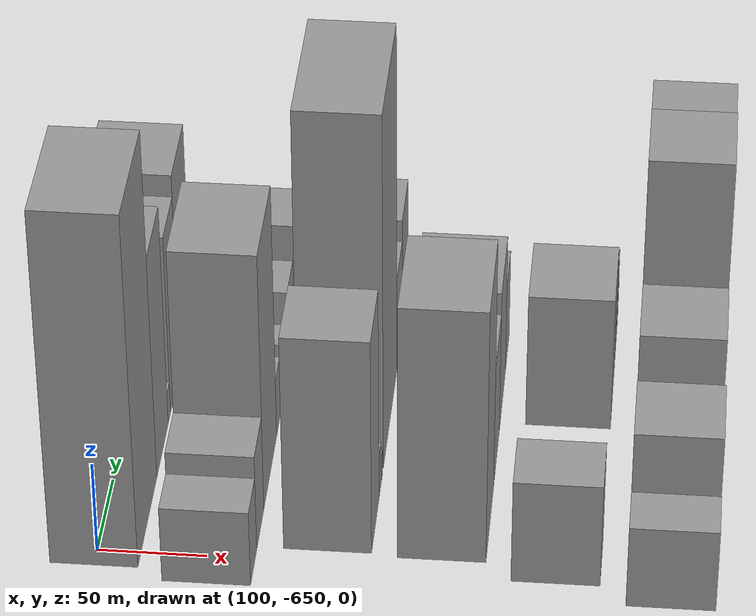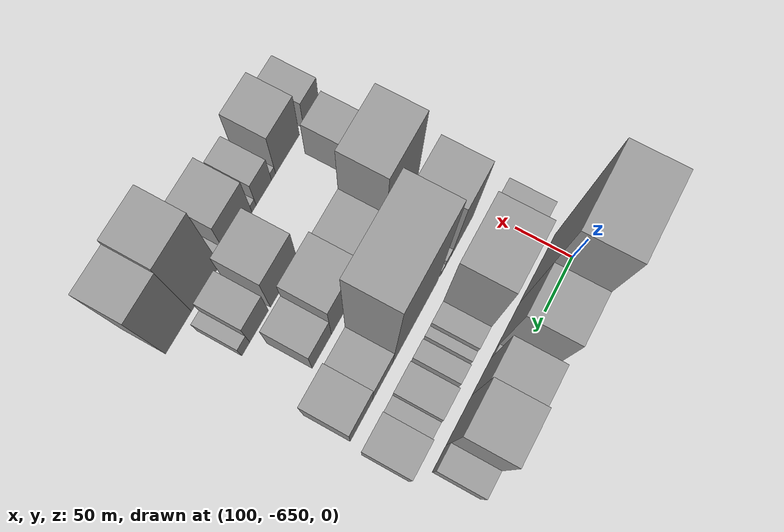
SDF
<sdf version="1.6">
 <world name="default">
  <model name="building_7">
   <static>1</static>
   <pose>100.0000 -628.3598 0 0.000000 0.000000 0.000000</pose>
   <link name="link">
    <pose>0 0 97.50 0 0 0</pose>
    <collision name="collision"><geometry><box><size>40.0000 63.6335 195.0000</size></box></geometry></collision>
    <visual name="visual">
     <cast_shadows>0</cast_shadows>
     <geometry><box><size>40.0000 63.6335 195.0000</size></box></geometry>
     <material>
      <script>
       <uri>model://grey_wall/materials/scripts</uri>
       <uri>model://grey_wall/materials/textures</uri>
       <name>vrc/grey_wall</name>
      </script>
     </material>
    </visual>
   </link>
  </model>
  <model name="building_8">
   <static>1</static>
   <pose>100.0000 -576.6208 0 0.000000 0.000000 0.000000</pose>
   <link name="link">
    <pose>0 0 63.00 0 0 0</pose>
    <collision name="collision"><geometry><box><size>40.0000 39.8445 126.0000</size></box></geometry></collision>
    <visual name="visual">
     <cast_shadows>0</cast_shadows>
     <geometry><box><size>40.0000 39.8445 126.0000</size></box></geometry>
     <material>
      <script>
       <uri>model://grey_wall/materials/scripts</uri>
       <uri>model://grey_wall/materials/textures</uri>
       <name>vrc/grey_wall</name>
      </script>
     </material>
    </visual>
   </link>
  </model>
  <model name="building_9">
   <static>1</static>
   <pose>100.0000 -552.2339 0 0.000000 0.000000 0.000000</pose>
   <link name="link">
    <pose>0 0 9.00 0 0 0</pose>
    <collision name="collision"><geometry><box><size>40.0000 8.9292 18.0000</size></box></geometry></collision>
    <visual name="visual">
     <cast_shadows>0</cast_shadows>
     <geometry><box><size>40.0000 8.9292 18.0000</size></box></geometry>
     <material>
      <script>
       <uri>model://grey_wall/materials/scripts</uri>
       <uri>model://grey_wall/materials/textures</uri>
       <name>vrc/grey_wall</name>
      </script>
     </material>
    </visual>
   </link>
  </model>
  <model name="building_10">
   <static>1</static>
   <pose>100.0000 -531.4667 0 0.000000 0.000000 0.000000</pose>
   <link name="link">
    <pose>0 0 51.00 0 0 0</pose>
    <collision name="collision"><geometry><box><size>40.0000 32.6054 102.0000</size></box></geometry></collision>
    <visual name="visual">
     <cast_shadows>0</cast_shadows>
     <geometry><box><size>40.0000 32.6054 102.0000</size></box></geometry>
     <material>
      <script>
       <uri>model://grey_wall/materials/scripts</uri>
       <uri>model://grey_wall/materials/textures</uri>
       <name>vrc/grey_wall</name>
      </script>
     </material>
    </visual>
   </link>
  </model>
  <model name="building_11">
   <static>1</static>
   <pose>100.0000 -494.0086 0 0.000000 0.000000 0.000000</pose>
   <link name="link">
    <pose>0 0 57.00 0 0 0</pose>
    <collision name="collision"><geometry><box><size>40.0000 42.3107 114.0000</size></box></geometry></collision>
    <visual name="visual">
     <cast_shadows>0</cast_shadows>
     <geometry><box><size>40.0000 42.3107 114.0000</size></box></geometry>
     <material>
      <script>
       <uri>model://grey_wall/materials/scripts</uri>
       <uri>model://grey_wall/materials/textures</uri>
       <name>vrc/grey_wall</name>
      </script>
     </material>
    </visual>
   </link>
  </model>
  <model name="building_12">
   <static>1</static>
   <pose>100.0000 -461.6784 0 0.000000 0.000000 0.000000</pose>
   <link name="link">
    <pose>0 0 19.50 0 0 0</pose>
    <collision name="collision"><geometry><box><size>40.0000 22.3498 39.0000</size></box></geometry></collision>
    <visual name="visual">
     <cast_shadows>0</cast_shadows>
     <geometry><box><size>40.0000 22.3498 39.0000</size></box></geometry>
     <material>
      <script>
       <uri>model://grey_wall/materials/scripts</uri>
       <uri>model://grey_wall/materials/textures</uri>
       <name>vrc/grey_wall</name>
      </script>
     </material>
    </visual>
   </link>
  </model>
  <model name="building_53">
   <static>1</static>
   <pose>152.0000 -656.1648 0 0.000000 0.000000 0.000000</pose>
   <link name="link">
    <pose>0 0 21.00 0 0 0</pose>
    <collision name="collision"><geometry><box><size>40.0000 24.4425 42.0000</size></box></geometry></collision>
    <visual name="visual">
     <cast_shadows>0</cast_shadows>
     <geometry><box><size>40.0000 24.4425 42.0000</size></box></geometry>
     <material>
      <script>
       <uri>model://grey_wall/materials/scripts</uri>
       <uri>model://grey_wall/materials/textures</uri>
       <name>vrc/grey_wall</name>
      </script>
     </material>
    </visual>
   </link>
  </model>
  <model name="building_54">
   <static>1</static>
   <pose>152.0000 -629.5401 0 0.000000 0.000000 0.000000</pose>
   <link name="link">
    <pose>0 0 27.00 0 0 0</pose>
    <collision name="collision"><geometry><box><size>40.0000 28.8069 54.0000</size></box></geometry></collision>
    <visual name="visual">
     <cast_shadows>0</cast_shadows>
     <geometry><box><size>40.0000 28.8069 54.0000</size></box></geometry>
     <material>
      <script>
       <uri>model://grey_wall/materials/scripts</uri>
       <uri>model://grey_wall/materials/textures</uri>
       <name>vrc/grey_wall</name>
      </script>
     </material>
    </visual>
   </link>
  </model>
  <model name="building_55">
   <static>1</static>
   <pose>152.0000 -588.4595 0 0.000000 0.000000 0.000000</pose>
   <link name="link">
    <pose>0 0 72.00 0 0 0</pose>
    <collision name="collision"><geometry><box><size>40.0000 53.3543 144.0000</size></box></geometry></collision>
    <visual name="visual">
     <cast_shadows>0</cast_shadows>
     <geometry><box><size>40.0000 53.3543 144.0000</size></box></geometry>
     <material>
      <script>
       <uri>model://grey_wall/materials/scripts</uri>
       <uri>model://grey_wall/materials/textures</uri>
       <name>vrc/grey_wall</name>
      </script>
     </material>
    </visual>
   </link>
  </model>
  <model name="building_56">
   <static>1</static>
   <pose>152.0000 -552.4265 0 0.000000 0.000000 0.000000</pose>
   <link name="link">
    <pose>0 0 16.50 0 0 0</pose>
    <collision name="collision"><geometry><box><size>40.0000 18.7116 33.0000</size></box></geometry></collision>
    <visual name="visual">
     <cast_shadows>0</cast_shadows>
     <geometry><box><size>40.0000 18.7116 33.0000</size></box></geometry>
     <material>
      <script>
       <uri>model://grey_wall/materials/scripts</uri>
       <uri>model://grey_wall/materials/textures</uri>
       <name>vrc/grey_wall</name>
      </script>
     </material>
    </visual>
   </link>
  </model>
  <model name="building_57">
   <static>1</static>
   <pose>152.0000 -538.7161 0 0.000000 0.000000 0.000000</pose>
   <link name="link">
    <pose>0 0 10.50 0 0 0</pose>
    <collision name="collision"><geometry><box><size>40.0000 8.7092 21.0000</size></box></geometry></collision>
    <visual name="visual">
     <cast_shadows>0</cast_shadows>
     <geometry><box><size>40.0000 8.7092 21.0000</size></box></geometry>
     <material>
      <script>
       <uri>model://grey_wall/materials/scripts</uri>
       <uri>model://grey_wall/materials/textures</uri>
       <name>vrc/grey_wall</name>
      </script>
     </material>
    </visual>
   </link>
  </model>
  <model name="building_58">
   <static>1</static>
   <pose>152.0000 -522.2402 0 0.000000 0.000000 0.000000</pose>
   <link name="link">
    <pose>0 0 15.00 0 0 0</pose>
    <collision name="collision"><geometry><box><size>40.0000 16.2424 30.0000</size></box></geometry></collision>
    <visual name="visual">
     <cast_shadows>0</cast_shadows>
     <geometry><box><size>40.0000 16.2424 30.0000</size></box></geometry>
     <material>
      <script>
       <uri>model://grey_wall/materials/scripts</uri>
       <uri>model://grey_wall/materials/textures</uri>
       <name>vrc/grey_wall</name>
      </script>
     </material>
    </visual>
   </link>
  </model>
  <model name="building_59">
   <static>1</static>
   <pose>152.0000 -496.1585 0 0.000000 0.000000 0.000000</pose>
   <link name="link">
    <pose>0 0 22.50 0 0 0</pose>
    <collision name="collision"><geometry><box><size>40.0000 25.9210 45.0000</size></box></geometry></collision>
    <visual name="visual">
     <cast_shadows>0</cast_shadows>
     <geometry><box><size>40.0000 25.9210 45.0000</size></box></geometry>
     <material>
      <script>
       <uri>model://grey_wall/materials/scripts</uri>
       <uri>model://grey_wall/materials/textures</uri>
       <name>vrc/grey_wall</name>
      </script>
     </material>
    </visual>
   </link>
  </model>
  <model name="building_60">
   <static>1</static>
   <pose>152.0000 -475.3873 0 0.000000 0.000000 0.000000</pose>
   <link name="link">
    <pose>0 0 15.00 0 0 0</pose>
    <collision name="collision"><geometry><box><size>40.0000 15.6216 30.0000</size></box></geometry></collision>
    <visual name="visual">
     <cast_shadows>0</cast_shadows>
     <geometry><box><size>40.0000 15.6216 30.0000</size></box></geometry>
     <material>
      <script>
       <uri>model://grey_wall/materials/scripts</uri>
       <uri>model://grey_wall/materials/textures</uri>
       <name>vrc/grey_wall</name>
      </script>
     </material>
    </visual>
   </link>
  </model>
  <model name="building_61">
   <static>1</static>
   <pose>152.0000 -451.9017 0 0.000000 0.000000 0.000000</pose>
   <link name="link">
    <pose>0 0 27.00 0 0 0</pose>
    <collision name="collision"><geometry><box><size>40.0000 31.3496 54.0000</size></box></geometry></collision>
    <visual name="visual">
     <cast_shadows>0</cast_shadows>
     <geometry><box><size>40.0000 31.3496 54.0000</size></box></geometry>
     <material>
      <script>
       <uri>model://grey_wall/materials/scripts</uri>
       <uri>model://grey_wall/materials/textures</uri>
       <name>vrc/grey_wall</name>
      </script>
     </material>
    </visual>
   </link>
  </model>
  <model name="building_107">
   <static>1</static>
   <pose>204.0000 -622.4457 0 0.000000 0.000000 0.000000</pose>
   <link name="link">
    <pose>0 0 60.00 0 0 0</pose>
    <collision name="collision"><geometry><box><size>40.0000 38.5811 120.0000</size></box></geometry></collision>
    <visual name="visual">
     <cast_shadows>0</cast_shadows>
     <geometry><box><size>40.0000 38.5811 120.0000</size></box></geometry>
     <material>
      <script>
       <uri>model://grey_wall/materials/scripts</uri>
       <uri>model://grey_wall/materials/textures</uri>
       <name>vrc/grey_wall</name>
      </script>
     </material>
    </visual>
   </link>
  </model>
  <model name="building_108">
   <static>1</static>
   <pose>204.0000 -597.7264 0 0.000000 0.000000 0.000000</pose>
   <link name="link">
    <pose>0 0 12.00 0 0 0</pose>
    <collision name="collision"><geometry><box><size>40.0000 10.8574 24.0000</size></box></geometry></collision>
    <visual name="visual">
     <cast_shadows>0</cast_shadows>
     <geometry><box><size>40.0000 10.8574 24.0000</size></box></geometry>
     <material>
      <script>
       <uri>model://grey_wall/materials/scripts</uri>
       <uri>model://grey_wall/materials/textures</uri>
       <name>vrc/grey_wall</name>
      </script>
     </material>
    </visual>
   </link>
  </model>
  <model name="building_109">
   <static>1</static>
   <pose>204.0000 -589.0380 0 0.000000 0.000000 0.000000</pose>
   <link name="link">
    <pose>0 0 7.50 0 0 0</pose>
    <collision name="collision"><geometry><box><size>40.0000 6.5195 15.0000</size></box></geometry></collision>
    <visual name="visual">
     <cast_shadows>0</cast_shadows>
     <geometry><box><size>40.0000 6.5195 15.0000</size></box></geometry>
     <material>
      <script>
       <uri>model://grey_wall/materials/scripts</uri>
       <uri>model://grey_wall/materials/textures</uri>
       <name>vrc/grey_wall</name>
      </script>
     </material>
    </visual>
   </link>
  </model>
  <model name="building_110">
   <static>1</static>
   <pose>204.0000 -543.7826 0 0.000000 0.000000 0.000000</pose>
   <link name="link">
    <pose>0 0 99.00 0 0 0</pose>
    <collision name="collision"><geometry><box><size>40.0000 73.9914 198.0000</size></box></geometry></collision>
    <visual name="visual">
     <cast_shadows>0</cast_shadows>
     <geometry><box><size>40.0000 73.9914 198.0000</size></box></geometry>
     <material>
      <script>
       <uri>model://grey_wall/materials/scripts</uri>
       <uri>model://grey_wall/materials/textures</uri>
       <name>vrc/grey_wall</name>
      </script>
     </material>
    </visual>
   </link>
  </model>
  <model name="building_111">
   <static>1</static>
   <pose>204.0000 -491.1103 0 0.000000 0.000000 0.000000</pose>
   <link name="link">
    <pose>0 0 27.00 0 0 0</pose>
    <collision name="collision"><geometry><box><size>40.0000 31.3531 54.0000</size></box></geometry></collision>
    <visual name="visual">
     <cast_shadows>0</cast_shadows>
     <geometry><box><size>40.0000 31.3531 54.0000</size></box></geometry>
     <material>
      <script>
       <uri>model://grey_wall/materials/scripts</uri>
       <uri>model://grey_wall/materials/textures</uri>
       <name>vrc/grey_wall</name>
      </script>
     </material>
    </visual>
   </link>
  </model>
  <model name="building_112">
   <static>1</static>
   <pose>204.0000 -458.0717 0 0.000000 0.000000 0.000000</pose>
   <link name="link">
    <pose>0 0 33.00 0 0 0</pose>
    <collision name="collision"><geometry><box><size>40.0000 34.7243 66.0000</size></box></geometry></collision>
    <visual name="visual">
     <cast_shadows>0</cast_shadows>
     <geometry><box><size>40.0000 34.7243 66.0000</size></box></geometry>
     <material>
      <script>
       <uri>model://grey_wall/materials/scripts</uri>
       <uri>model://grey_wall/materials/textures</uri>
       <name>vrc/grey_wall</name>
      </script>
     </material>
    </visual>
   </link>
  </model>
  <model name="building_158">
   <static>1</static>
   <pose>256.0000 -616.9332 0 0.000000 0.000000 0.000000</pose>
   <link name="link">
    <pose>0 0 70.50 0 0 0</pose>
    <collision name="collision"><geometry><box><size>40.0000 53.7079 141.0000</size></box></geometry></collision>
    <visual name="visual">
     <cast_shadows>0</cast_shadows>
     <geometry><box><size>40.0000 53.7079 141.0000</size></box></geometry>
     <material>
      <script>
       <uri>model://grey_wall/materials/scripts</uri>
       <uri>model://grey_wall/materials/textures</uri>
       <name>vrc/grey_wall</name>
      </script>
     </material>
    </visual>
   </link>
  </model>
  <model name="building_159">
   <static>1</static>
   <pose>256.0000 -569.6194 0 0.000000 0.000000 0.000000</pose>
   <link name="link">
    <pose>0 0 34.50 0 0 0</pose>
    <collision name="collision"><geometry><box><size>40.0000 40.9197 69.0000</size></box></geometry></collision>
    <visual name="visual">
     <cast_shadows>0</cast_shadows>
     <geometry><box><size>40.0000 40.9197 69.0000</size></box></geometry>
     <material>
      <script>
       <uri>model://grey_wall/materials/scripts</uri>
       <uri>model://grey_wall/materials/textures</uri>
       <name>vrc/grey_wall</name>
      </script>
     </material>
    </visual>
   </link>
  </model>
  <model name="building_160">
   <static>1</static>
   <pose>256.0000 -526.8195 0 0.000000 0.000000 0.000000</pose>
   <link name="link">
    <pose>0 0 40.50 0 0 0</pose>
    <collision name="collision"><geometry><box><size>40.0000 44.6800 81.0000</size></box></geometry></collision>
    <visual name="visual">
     <cast_shadows>0</cast_shadows>
     <geometry><box><size>40.0000 44.6800 81.0000</size></box></geometry>
     <material>
      <script>
       <uri>model://grey_wall/materials/scripts</uri>
       <uri>model://grey_wall/materials/textures</uri>
       <name>vrc/grey_wall</name>
      </script>
     </material>
    </visual>
   </link>
  </model>
  <model name="building_161">
   <static>1</static>
   <pose>256.0000 -489.5525 0 0.000000 0.000000 0.000000</pose>
   <link name="link">
    <pose>0 0 25.50 0 0 0</pose>
    <collision name="collision"><geometry><box><size>40.0000 29.8540 51.0000</size></box></geometry></collision>
    <visual name="visual">
     <cast_shadows>0</cast_shadows>
     <geometry><box><size>40.0000 29.8540 51.0000</size></box></geometry>
     <material>
      <script>
       <uri>model://grey_wall/materials/scripts</uri>
       <uri>model://grey_wall/materials/textures</uri>
       <name>vrc/grey_wall</name>
      </script>
     </material>
    </visual>
   </link>
  </model>
  <model name="building_207">
   <static>1</static>
   <pose>308.0000 -639.8673 0 0.000000 0.000000 0.000000</pose>
   <link name="link">
    <pose>0 0 28.50 0 0 0</pose>
    <collision name="collision"><geometry><box><size>40.0000 31.4390 57.0000</size></box></geometry></collision>
    <visual name="visual">
     <cast_shadows>0</cast_shadows>
     <geometry><box><size>40.0000 31.4390 57.0000</size></box></geometry>
     <material>
      <script>
       <uri>model://grey_wall/materials/scripts</uri>
       <uri>model://grey_wall/materials/textures</uri>
       <name>vrc/grey_wall</name>
      </script>
     </material>
    </visual>
   </link>
  </model>
  <model name="building_208">
   <static>1</static>
   <pose>308.0000 -521.5534 0 0.000000 0.000000 0.000000</pose>
   <link name="link">
    <pose>0 0 37.50 0 0 0</pose>
    <collision name="collision"><geometry><box><size>40.0000 42.3962 75.0000</size></box></geometry></collision>
    <visual name="visual">
     <cast_shadows>0</cast_shadows>
     <geometry><box><size>40.0000 42.3962 75.0000</size></box></geometry>
     <material>
      <script>
       <uri>model://grey_wall/materials/scripts</uri>
       <uri>model://grey_wall/materials/textures</uri>
       <name>vrc/grey_wall</name>
      </script>
     </material>
    </visual>
   </link>
  </model>
  <model name="building_209">
   <static>1</static>
   <pose>308.0000 -483.1942 0 0.000000 0.000000 0.000000</pose>
   <link name="link">
    <pose>0 0 25.50 0 0 0</pose>
    <collision name="collision"><geometry><box><size>40.0000 28.3223 51.0000</size></box></geometry></collision>
    <visual name="visual">
     <cast_shadows>0</cast_shadows>
     <geometry><box><size>40.0000 28.3223 51.0000</size></box></geometry>
     <material>
      <script>
       <uri>model://grey_wall/materials/scripts</uri>
       <uri>model://grey_wall/materials/textures</uri>
       <name>vrc/grey_wall</name>
      </script>
     </material>
    </visual>
   </link>
  </model>
  <model name="building_210">
   <static>1</static>
   <pose>308.0000 -463.0001 0 0.000000 0.000000 0.000000</pose>
   <link name="link">
    <pose>0 0 13.50 0 0 0</pose>
    <collision name="collision"><geometry><box><size>40.0000 12.0659 27.0000</size></box></geometry></collision>
    <visual name="visual">
     <cast_shadows>0</cast_shadows>
     <geometry><box><size>40.0000 12.0659 27.0000</size></box></geometry>
     <material>
      <script>
       <uri>model://grey_wall/materials/scripts</uri>
       <uri>model://grey_wall/materials/textures</uri>
       <name>vrc/grey_wall</name>
      </script>
     </material>
    </visual>
   </link>
  </model>
  <model name="building_258">
   <static>1</static>
   <pose>360.0000 -655.4370 0 0.000000 0.000000 0.000000</pose>
   <link name="link">
    <pose>0 0 22.50 0 0 0</pose>
    <collision name="collision"><geometry><box><size>40.0000 25.2755 45.0000</size></box></geometry></collision>
    <visual name="visual">
     <cast_shadows>0</cast_shadows>
     <geometry><box><size>40.0000 25.2755 45.0000</size></box></geometry>
     <material>
      <script>
       <uri>model://grey_wall/materials/scripts</uri>
       <uri>model://grey_wall/materials/textures</uri>
       <name>vrc/grey_wall</name>
      </script>
     </material>
    </visual>
   </link>
  </model>
  <model name="building_259">
   <static>1</static>
   <pose>360.0000 -616.5221 0 0.000000 0.000000 0.000000</pose>
   <link name="link">
    <pose>0 0 36.00 0 0 0</pose>
    <collision name="collision"><geometry><box><size>40.0000 38.5543 72.0000</size></box></geometry></collision>
    <visual name="visual">
     <cast_shadows>0</cast_shadows>
     <geometry><box><size>40.0000 38.5543 72.0000</size></box></geometry>
     <material>
      <script>
       <uri>model://grey_wall/materials/scripts</uri>
       <uri>model://grey_wall/materials/textures</uri>
       <name>vrc/grey_wall</name>
      </script>
     </material>
    </visual>
   </link>
  </model>
  <model name="building_260">
   <static>1</static>
   <pose>360.0000 -594.0261 0 0.000000 0.000000 0.000000</pose>
   <link name="link">
    <pose>0 0 7.50 0 0 0</pose>
    <collision name="collision"><geometry><box><size>40.0000 6.4378 15.0000</size></box></geometry></collision>
    <visual name="visual">
     <cast_shadows>0</cast_shadows>
     <geometry><box><size>40.0000 6.4378 15.0000</size></box></geometry>
     <material>
      <script>
       <uri>model://grey_wall/materials/scripts</uri>
       <uri>model://grey_wall/materials/textures</uri>
       <name>vrc/grey_wall</name>
      </script>
     </material>
    </visual>
   </link>
  </model>
  <model name="building_261">
   <static>1</static>
   <pose>360.0000 -578.7148 0 0.000000 0.000000 0.000000</pose>
   <link name="link">
    <pose>0 0 22.50 0 0 0</pose>
    <collision name="collision"><geometry><box><size>40.0000 24.1847 45.0000</size></box></geometry></collision>
    <visual name="visual">
     <cast_shadows>0</cast_shadows>
     <geometry><box><size>40.0000 24.1847 45.0000</size></box></geometry>
     <material>
      <script>
       <uri>model://grey_wall/materials/scripts</uri>
       <uri>model://grey_wall/materials/textures</uri>
       <name>vrc/grey_wall</name>
      </script>
     </material>
    </visual>
   </link>
  </model>
  <model name="building_262">
   <static>1</static>
   <pose>360.0000 -563.3293 0 0.000000 0.000000 0.000000</pose>
   <link name="link">
    <pose>0 0 7.50 0 0 0</pose>
    <collision name="collision"><geometry><box><size>40.0000 6.5863 15.0000</size></box></geometry></collision>
    <visual name="visual">
     <cast_shadows>0</cast_shadows>
     <geometry><box><size>40.0000 6.5863 15.0000</size></box></geometry>
     <material>
      <script>
       <uri>model://grey_wall/materials/scripts</uri>
       <uri>model://grey_wall/materials/textures</uri>
       <name>vrc/grey_wall</name>
      </script>
     </material>
    </visual>
   </link>
  </model>
  <model name="building_263">
   <static>1</static>
   <pose>360.0000 -540.1103 0 0.000000 0.000000 0.000000</pose>
   <link name="link">
    <pose>0 0 34.50 0 0 0</pose>
    <collision name="collision"><geometry><box><size>40.0000 39.8517 69.0000</size></box></geometry></collision>
    <visual name="visual">
     <cast_shadows>0</cast_shadows>
     <geometry><box><size>40.0000 39.8517 69.0000</size></box></geometry>
     <material>
      <script>
       <uri>model://grey_wall/materials/scripts</uri>
       <uri>model://grey_wall/materials/textures</uri>
       <name>vrc/grey_wall</name>
      </script>
     </material>
    </visual>
   </link>
  </model>
  <model name="building_264">
   <static>1</static>
   <pose>360.0000 -515.3574 0 0.000000 0.000000 0.000000</pose>
   <link name="link">
    <pose>0 0 10.50 0 0 0</pose>
    <collision name="collision"><geometry><box><size>40.0000 9.6541 21.0000</size></box></geometry></collision>
    <visual name="visual">
     <cast_shadows>0</cast_shadows>
     <geometry><box><size>40.0000 9.6541 21.0000</size></box></geometry>
     <material>
      <script>
       <uri>model://grey_wall/materials/scripts</uri>
       <uri>model://grey_wall/materials/textures</uri>
       <name>vrc/grey_wall</name>
      </script>
     </material>
    </visual>
   </link>
  </model>
  <model name="building_265">
   <static>1</static>
   <pose>360.0000 -489.2254 0 0.000000 0.000000 0.000000</pose>
   <link name="link">
    <pose>0 0 66.00 0 0 0</pose>
    <collision name="collision"><geometry><box><size>40.0000 42.6099 132.0000</size></box></geometry></collision>
    <visual name="visual">
     <cast_shadows>0</cast_shadows>
     <geometry><box><size>40.0000 42.6099 132.0000</size></box></geometry>
     <material>
      <script>
       <uri>model://grey_wall/materials/scripts</uri>
       <uri>model://grey_wall/materials/textures</uri>
       <name>vrc/grey_wall</name>
      </script>
     </material>
    </visual>
   </link>
  </model>
  <model name="building_266">
   <static>1</static>
   <pose>360.0000 -448.9795 0 0.000000 0.000000 0.000000</pose>
   <link name="link">
    <pose>0 0 61.50 0 0 0</pose>
    <collision name="collision"><geometry><box><size>40.0000 37.8821 123.0000</size></box></geometry></collision>
    <visual name="visual">
     <cast_shadows>0</cast_shadows>
     <geometry><box><size>40.0000 37.8821 123.0000</size></box></geometry>
     <material>
      <script>
       <uri>model://grey_wall/materials/scripts</uri>
       <uri>model://grey_wall/materials/textures</uri>
       <name>vrc/grey_wall</name>
      </script>
     </material>
    </visual>
   </link>
  </model>
 </world>
</sdf>
